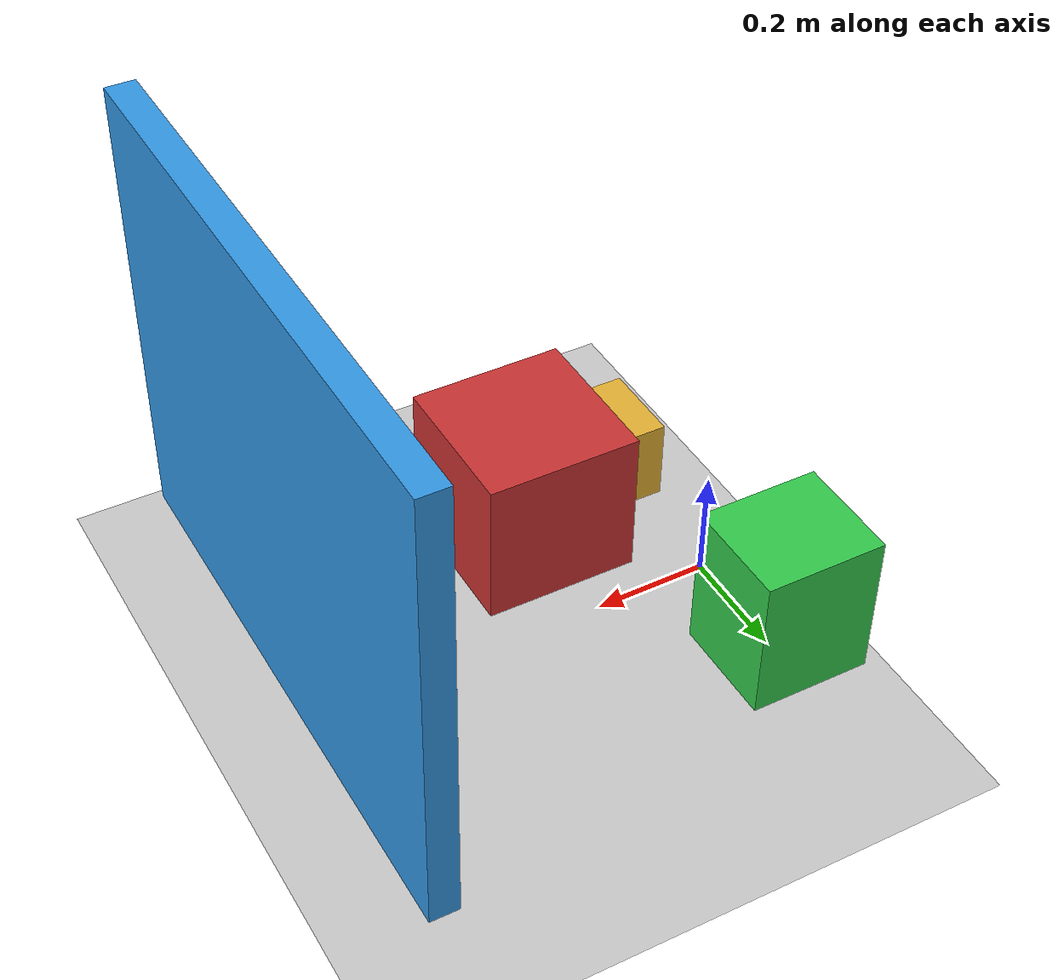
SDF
<?xml version="1.0" ?>
<sdf version="1.6">
  <world name="maixsense_obstacles_world">
    <physics type="ode">
      <real_time_update_rate>1000.0</real_time_update_rate>
      <max_step_size>0.001</max_step_size>
      <real_time_factor>1.0</real_time_factor>
    </physics>

    <include>
      <uri>model://sun</uri>
    </include>
    <include>
      <uri>model://ground_plane</uri>
    </include>

    <!-- Static perception/collision-validation obstacles.
         This world is intentionally separate from maixsense_empty.world so the
         frozen C5.41 baseline remains unchanged. -->
    <model name="test_box_front">
      <static>true</static>
      <pose>0.35 0 0.35 0 0 0</pose>
      <link name="link">
        <collision name="collision">
          <geometry><box><size>0.25 0.25 0.25</size></box></geometry>
        </collision>
        <visual name="visual">
          <geometry><box><size>0.25 0.25 0.25</size></box></geometry>
          <material>
            <ambient>0.8 0.2 0.2 1</ambient>
            <diffuse>0.8 0.2 0.2 1</diffuse>
          </material>
        </visual>
      </link>
    </model>

    <model name="test_box_left">
      <static>true</static>
      <pose>0.10 0.35 0.30 0 0 0</pose>
      <link name="link">
        <collision name="collision">
          <geometry><box><size>0.20 0.18 0.25</size></box></geometry>
        </collision>
        <visual name="visual">
          <geometry><box><size>0.20 0.18 0.25</size></box></geometry>
          <material>
            <ambient>0.2 0.8 0.3 1</ambient>
            <diffuse>0.2 0.8 0.3 1</diffuse>
          </material>
        </visual>
      </link>
    </model>

    <model name="test_box_right">
      <static>true</static>
      <pose>0.15 -0.25 0.10 0 0 0</pose>
      <link name="link">
        <collision name="collision">
          <geometry><box><size>0.35 0.15 0.15</size></box></geometry>
        </collision>
        <visual name="visual">
          <geometry><box><size>0.35 0.15 0.15</size></box></geometry>
          <material>
            <ambient>0.9 0.7 0.2 1</ambient>
            <diffuse>0.9 0.7 0.2 1</diffuse>
          </material>
        </visual>
      </link>
    </model>

    <model name="test_wall">
      <static>true</static>
      <pose>0.75 0 0.5 0 0 0</pose>
      <link name="link">
        <collision name="collision">
          <geometry><box><size>0.05 1.0 1.0</size></box></geometry>
        </collision>
        <visual name="visual">
          <geometry><box><size>0.05 1.0 0.8</size></box></geometry>
          <material>
            <ambient>0.2 0.6 0.9 1</ambient>
            <diffuse>0.2 0.6 0.9 1</diffuse>
          </material>
        </visual>
      </link>
    </model>
  </world>
</sdf>
